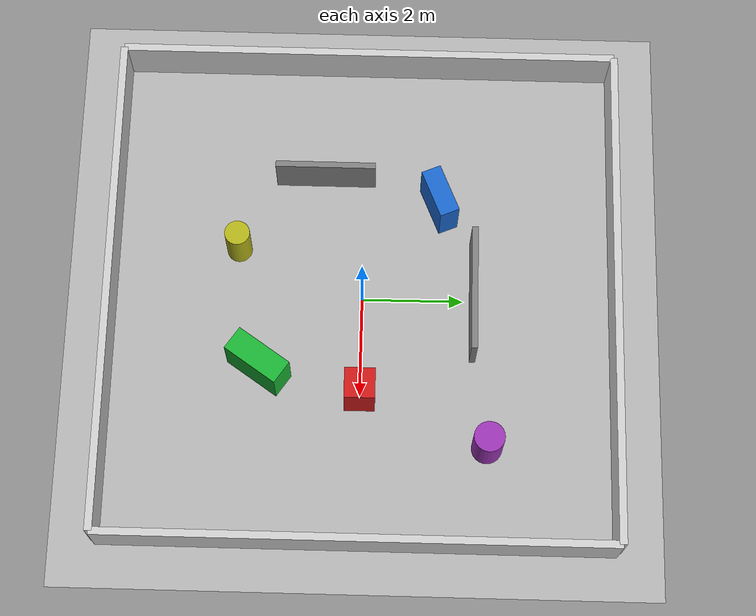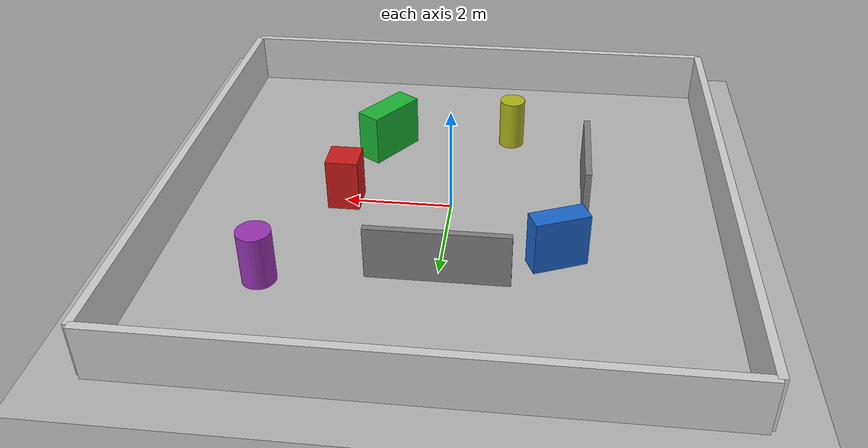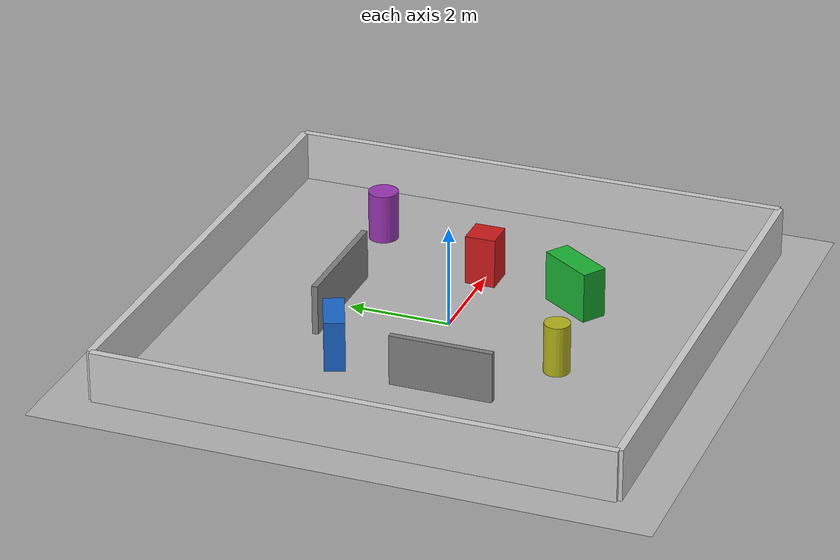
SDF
<?xml version="1.0" ?>
<sdf version="1.9">
  <world name="empty">

    <!-- Gazebo systems -->

    <plugin
      filename="gz-sim-physics-system"
      name="gz::sim::systems::Physics">
    </plugin>

    <plugin
      filename="gz-sim-user-commands-system"
      name="gz::sim::systems::UserCommands">
    </plugin>

    <plugin
      filename="gz-sim-scene-broadcaster-system"
      name="gz::sim::systems::SceneBroadcaster">
    </plugin>

    <plugin
      filename="gz-sim-sensors-system"
      name="gz::sim::systems::Sensors">
      <render_engine>ogre2</render_engine>
    </plugin>

    <!-- Light -->

    <light type="directional" name="sun">
      <cast_shadows>true</cast_shadows>
      <pose>0 0 10 0 0 0</pose>
      <diffuse>0.8 0.8 0.8 1</diffuse>
      <specular>0.2 0.2 0.2 1</specular>
      <direction>-0.5 0.1 -0.9</direction>
    </light>

    <!-- Ground -->

    <model name="ground_plane">
      <static>true</static>
      <link name="link">
        <collision name="collision">
          <geometry>
            <plane>
              <normal>0 0 1</normal>
              <size>20 20</size>
            </plane>
          </geometry>
        </collision>

        <visual name="visual">
          <geometry>
            <plane>
              <normal>0 0 1</normal>
              <size>20 20</size>
            </plane>
          </geometry>
          <material>
            <ambient>0.7 0.7 0.7 1</ambient>
            <diffuse>0.7 0.7 0.7 1</diffuse>
          </material>
        </visual>
      </link>
    </model>

    <!-- Outer walls -->

    <model name="wall_north">
      <static>true</static>
      <pose>0 5 0.5 0 0 0</pose>
      <link name="link">
        <collision name="collision">
          <geometry>
            <box>
              <size>10 0.15 1.0</size>
            </box>
          </geometry>
        </collision>
        <visual name="visual">
          <geometry>
            <box>
              <size>10 0.15 1.0</size>
            </box>
          </geometry>
          <material>
            <ambient>0.8 0.8 0.8 1</ambient>
            <diffuse>0.8 0.8 0.8 1</diffuse>
          </material>
        </visual>
      </link>
    </model>

    <model name="wall_south">
      <static>true</static>
      <pose>0 -5 0.5 0 0 0</pose>
      <link name="link">
        <collision name="collision">
          <geometry>
            <box>
              <size>10 0.15 1.0</size>
            </box>
          </geometry>
        </collision>
        <visual name="visual">
          <geometry>
            <box>
              <size>10 0.15 1.0</size>
            </box>
          </geometry>
          <material>
            <ambient>0.8 0.8 0.8 1</ambient>
            <diffuse>0.8 0.8 0.8 1</diffuse>
          </material>
        </visual>
      </link>
    </model>

    <model name="wall_east">
      <static>true</static>
      <pose>5 0 0.5 0 0 0</pose>
      <link name="link">
        <collision name="collision">
          <geometry>
            <box>
              <size>0.15 10 1.0</size>
            </box>
          </geometry>
        </collision>
        <visual name="visual">
          <geometry>
            <box>
              <size>0.15 10 1.0</size>
            </box>
          </geometry>
          <material>
            <ambient>0.8 0.8 0.8 1</ambient>
            <diffuse>0.8 0.8 0.8 1</diffuse>
          </material>
        </visual>
      </link>
    </model>

    <model name="wall_west">
      <static>true</static>
      <pose>-5 0 0.5 0 0 0</pose>
      <link name="link">
        <collision name="collision">
          <geometry>
            <box>
              <size>0.15 10 1.0</size>
            </box>
          </geometry>
        </collision>
        <visual name="visual">
          <geometry>
            <box>
              <size>0.15 10 1.0</size>
            </box>
          </geometry>
          <material>
            <ambient>0.8 0.8 0.8 1</ambient>
            <diffuse>0.8 0.8 0.8 1</diffuse>
          </material>
        </visual>
      </link>
    </model>

    <!-- Inner obstacles -->

    <model name="box_obstacle_1">
      <static>true</static>
      <pose>2 0 0.5 0 0 0</pose>
      <link name="link">
        <collision name="collision">
          <geometry>
            <box>
              <size>0.6 0.6 1.0</size>
            </box>
          </geometry>
        </collision>
        <visual name="visual">
          <geometry>
            <box>
              <size>0.6 0.6 1.0</size>
            </box>
          </geometry>
          <material>
            <ambient>0.8 0.1 0.1 1</ambient>
            <diffuse>0.8 0.1 0.1 1</diffuse>
          </material>
        </visual>
      </link>
    </model>

    <model name="box_obstacle_2">
      <static>true</static>
      <pose>-2 1.5 0.5 0 0 0.4</pose>
      <link name="link">
        <collision name="collision">
          <geometry>
            <box>
              <size>1.0 0.4 1.0</size>
            </box>
          </geometry>
        </collision>
        <visual name="visual">
          <geometry>
            <box>
              <size>1.0 0.4 1.0</size>
            </box>
          </geometry>
          <material>
            <ambient>0.1 0.4 0.8 1</ambient>
            <diffuse>0.1 0.4 0.8 1</diffuse>
          </material>
        </visual>
      </link>
    </model>

    <model name="box_obstacle_3">
      <static>true</static>
      <pose>1.5 -2.0 0.5 0 0 -0.6</pose>
      <link name="link">
        <collision name="collision">
          <geometry>
            <box>
              <size>0.5 1.2 1.0</size>
            </box>
          </geometry>
        </collision>
        <visual name="visual">
          <geometry>
            <box>
              <size>0.5 1.2 1.0</size>
            </box>
          </geometry>
          <material>
            <ambient>0.1 0.7 0.2 1</ambient>
            <diffuse>0.1 0.7 0.2 1</diffuse>
          </material>
        </visual>
      </link>
    </model>

    <model name="pillar_1">
      <static>true</static>
      <pose>-1.0 -2.5 0.5 0 0 0</pose>
      <link name="link">
        <collision name="collision">
          <geometry>
            <cylinder>
              <radius>0.25</radius>
              <length>1.0</length>
            </cylinder>
          </geometry>
        </collision>
        <visual name="visual">
          <geometry>
            <cylinder>
              <radius>0.25</radius>
              <length>1.0</length>
            </cylinder>
          </geometry>
          <material>
            <ambient>0.7 0.7 0.1 1</ambient>
            <diffuse>0.7 0.7 0.1 1</diffuse>
          </material>
        </visual>
      </link>
    </model>

    <model name="pillar_2">
      <static>true</static>
      <pose>3.0 2.5 0.5 0 0 0</pose>
      <link name="link">
        <collision name="collision">
          <geometry>
            <cylinder>
              <radius>0.3</radius>
              <length>1.0</length>
            </cylinder>
          </geometry>
        </collision>
        <visual name="visual">
          <geometry>
            <cylinder>
              <radius>0.3</radius>
              <length>1.0</length>
            </cylinder>
          </geometry>
          <material>
            <ambient>0.6 0.2 0.7 1</ambient>
            <diffuse>0.6 0.2 0.7 1</diffuse>
          </material>
        </visual>
      </link>
    </model>

    <!-- Short inner walls -->

    <model name="inner_wall_1">
      <static>true</static>
      <pose>0 2.2 0.5 0 0 0</pose>
      <link name="link">
        <collision name="collision">
          <geometry>
            <box>
              <size>2.5 0.12 1.0</size>
            </box>
          </geometry>
        </collision>
        <visual name="visual">
          <geometry>
            <box>
              <size>2.5 0.12 1.0</size>
            </box>
          </geometry>
          <material>
            <ambient>0.5 0.5 0.5 1</ambient>
            <diffuse>0.5 0.5 0.5 1</diffuse>
          </material>
        </visual>
      </link>
    </model>

    <model name="inner_wall_2">
      <static>true</static>
      <pose>-2.5 -0.8 0.5 0 0 1.5708</pose>
      <link name="link">
        <collision name="collision">
          <geometry>
            <box>
              <size>2.0 0.12 1.0</size>
            </box>
          </geometry>
        </collision>
        <visual name="visual">
          <geometry>
            <box>
              <size>2.0 0.12 1.0</size>
            </box>
          </geometry>
          <material>
            <ambient>0.5 0.5 0.5 1</ambient>
            <diffuse>0.5 0.5 0.5 1</diffuse>
          </material>
        </visual>
      </link>
    </model>

  </world>
</sdf>
